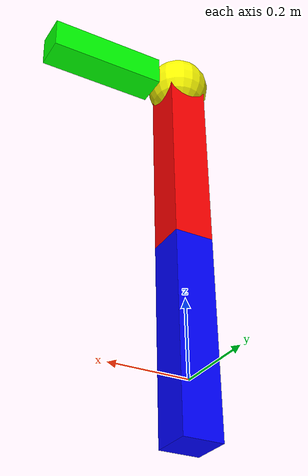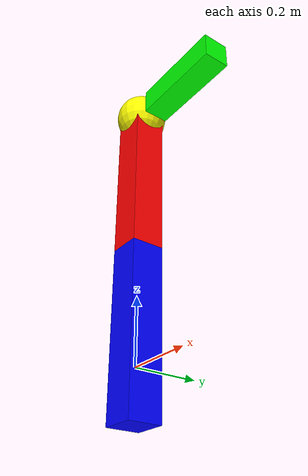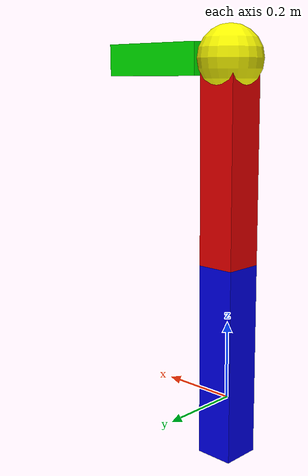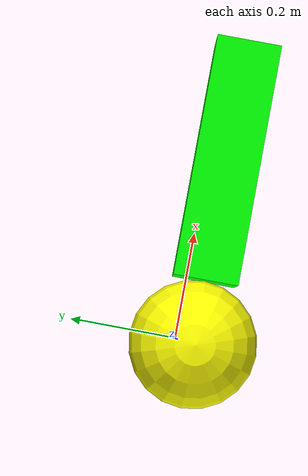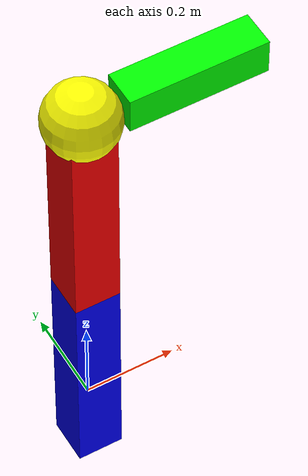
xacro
<robot name="brazo_simple">
  <link name="base_link"/>
  <link name="link1">
  <visual>
    <geometry>
      <box size="0.1 0.1 0.5"/>
    </geometry>
    <material name="blue">
      <color rgba="0 0 1 1"/>
    </material>
  </visual>

</link>
  <link name="link2">
  <visual>
    <geometry>
      <box size="0.1 0.1 0.5"/>
    </geometry>
    <material name="red">
      <color rgba="1 0 0 1"/>
    </material>
  </visual>
</link>

<link name="wrist">
  <visual>
    <geometry>
      <sphere radius="0.08"/> <!-- bola más grande -->
    </geometry>
    <material name="yellow">
      <color rgba="1 1 0 1"/>
    </material>
  </visual>
</link>

<link name="link3">
  <visual>
    <!-- desplazamos el box 0.15 hacia X para que quede acoplado al borde de la bola -->
    <origin xyz="0.15 0 0" rpy="0 0 0"/>
    <geometry>
      <box size="0.3 0.08 0.08"/> <!-- largo 0.3, delgado en Y,Z -->
    </geometry>
    <material name="green">
      <color rgba="0 1 0 1"/>
    </material>
  </visual>
</link>

  <joint name="joint1" type="revolute">
    <parent link="base_link"/>
    <child link="link1"/>
    <origin xyz="0 0 0.1" rpy="0 0 0"/>
    <axis xyz="0 0 1"/>
    <limit lower="-1.57" upper="1.57" effort="10" velocity="1"/>
  </joint>

  <joint name="joint2" type="revolute">
    <parent link="link1"/>
    <child link="link2"/>
    <origin xyz="0 0 0.5" rpy="0 0 0"/>
    <axis xyz="0 0 1"/>
    <limit lower="-1.57" upper="1.57" effort="10" velocity="1"/>
  </joint>

<joint name="joint_wrist" type="fixed">
  <parent link="link2"/>
  <child link="wrist"/>
  <origin xyz="0 0 0.25" rpy="0 0 0"/> <!-- centro del extremo del brazo rojo -->
</joint>

<joint name="joint3" type="revolute">
  <parent link="wrist"/>
  <child link="link3"/>
  <origin xyz="0.08 0 0" rpy="0 0 0"/> <!-- borde de la bola -->
  <axis xyz="0 1 0"/>
  <limit lower="-1.57" upper="1.57" effort="10" velocity="1"/>
</joint>

</robot>
